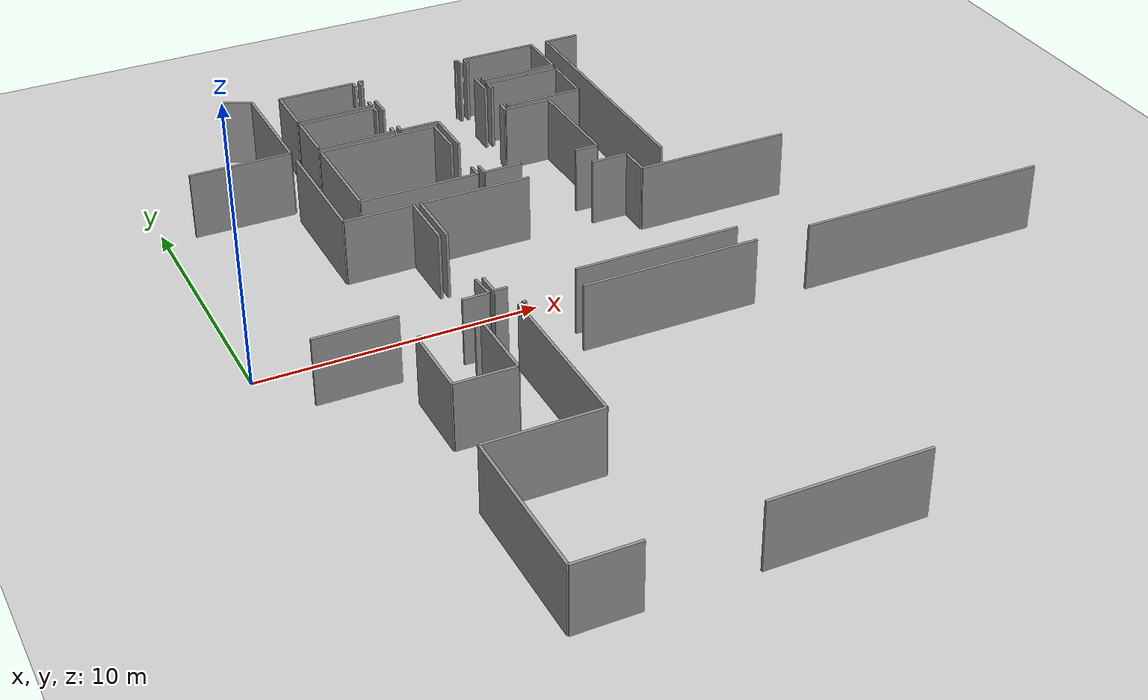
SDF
<sdf version="1.6">
 <world name="default">
  <model name="ground_plane">
   <static>1</static>
   <link name="link">
    <collision name="collision">
     <geometry><plane><normal>0 0 1</normal><size>100 100</size></plane></geometry>
     <surface><friction><ode><mu>100</mu><mu2>50</mu2></ode></friction></surface>
    </collision>
    <visual name="visual">
     <cast_shadows>0</cast_shadows>
     <geometry><plane><normal>0 0 1</normal><size>100 100</size></plane></geometry>
     <material>
      <script><uri>file://media/materials/scripts/gazebo.material</uri><name>Gazebo/Grey</name></script>
     </material>
    </visual>
   </link>
  </model>
  <model name="50056458">
   <static>1</static>
   <link name="Wall_136">
    <collision name="Wall_136_Collision">
     <geometry><box><size>0.935739876511 0.1 2.5</size></box></geometry>
     <pose>0.467869938255 0 1.25 0 0 0</pose>
    </collision>
    <visual name="Wall_136_Visual">
     <pose>0.467869938255 0 1.25 0 0 0</pose>
     <geometry><box><size>0.935739876511 0.1 2.5</size></box></geometry>
     <material>
      <script><uri>file://media/materials/scripts/gazebo.material</uri><name>Gazebo/Grey</name></script>
      <ambient>1 1 1 1</ambient>
     </material>
    </visual>
    <pose>62.1850305335 -17.0083088416 0 0 0 3.14159265359</pose>
   </link>
   <link name="Wall_137">
    <collision name="Wall_137_Collision">
     <geometry><box><size>2.92494939314 0.1 2.5</size></box></geometry>
     <pose>1.46247469657 0 1.25 0 0 0</pose>
    </collision>
    <visual name="Wall_137_Visual">
     <pose>1.46247469657 0 1.25 0 0 0</pose>
     <geometry><box><size>2.92494939314 0.1 2.5</size></box></geometry>
     <material>
      <script><uri>file://media/materials/scripts/gazebo.material</uri><name>Gazebo/Grey</name></script>
      <ambient>1 1 1 1</ambient>
     </material>
    </visual>
    <pose>59.10694775 -17.0083088416 0 0 0 3.14159265359</pose>
   </link>
   <link name="Wall_147">
    <collision name="Wall_147_Collision">
     <geometry><box><size>1.12197871077 0.1 2.5</size></box></geometry>
     <pose>0.560989355386 0 1.25 0 0 0</pose>
    </collision>
    <visual name="Wall_147_Visual">
     <pose>0.560989355386 0 1.25 0 0 0</pose>
     <geometry><box><size>1.12197871077 0.1 2.5</size></box></geometry>
     <material>
      <script><uri>file://media/materials/scripts/gazebo.material</uri><name>Gazebo/Grey</name></script>
      <ambient>1 1 1 1</ambient>
     </material>
    </visual>
    <pose>58.5645438607 -0.745847696647 0 0 0 -0.455882741428</pose>
   </link>
   <link name="Wall_148">
    <collision name="Wall_148_Collision">
     <geometry><box><size>4.29637409268 0.1 2.5</size></box></geometry>
     <pose>2.14818704634 0 1.25 0 0 0</pose>
    </collision>
    <visual name="Wall_148_Visual">
     <pose>2.14818704634 0 1.25 0 0 0</pose>
     <geometry><box><size>4.29637409268 0.1 2.5</size></box></geometry>
     <material>
      <script><uri>file://media/materials/scripts/gazebo.material</uri><name>Gazebo/Grey</name></script>
      <ambient>1 1 1 1</ambient>
     </material>
    </visual>
    <pose>59.5719379674 -1.23980451777 0 0 0 -1.57079632679</pose>
   </link>
   <link name="Wall_149">
    <collision name="Wall_149_Collision">
     <geometry><box><size>3.72093811141 0.1 2.5</size></box></geometry>
     <pose>1.86046905571 0 1.25 0 0 0</pose>
    </collision>
    <visual name="Wall_149_Visual">
     <pose>1.86046905571 0 1.25 0 0 0</pose>
     <geometry><box><size>3.72093811141 0.1 2.5</size></box></geometry>
     <material>
      <script><uri>file://media/materials/scripts/gazebo.material</uri><name>Gazebo/Grey</name></script>
      <ambient>1 1 1 1</ambient>
     </material>
    </visual>
    <pose>59.5719379674 -5.53617861045 0 0 0 3.14159265359</pose>
   </link>
   <link name="Wall_152">
    <collision name="Wall_152_Collision">
     <geometry><box><size>4.66734989455 0.1 2.5</size></box></geometry>
     <pose>2.33367494728 0 1.25 0 0 0</pose>
    </collision>
    <visual name="Wall_152_Visual">
     <pose>2.33367494728 0 1.25 0 0 0</pose>
     <geometry><box><size>4.66734989455 0.1 2.5</size></box></geometry>
     <material>
      <script><uri>file://media/materials/scripts/gazebo.material</uri><name>Gazebo/Grey</name></script>
      <ambient>1 1 1 1</ambient>
     </material>
    </visual>
    <pose>59.5904020598 -6.15938407853 0 0 0 -1.57079632679</pose>
   </link>
   <link name="Wall_153">
    <collision name="Wall_153_Collision">
     <geometry><box><size>2.52771731305 0.1 2.5</size></box></geometry>
     <pose>1.26385865653 0 1.25 0 0 0</pose>
    </collision>
    <visual name="Wall_153_Visual">
     <pose>1.26385865653 0 1.25 0 0 0</pose>
     <geometry><box><size>2.52771731305 0.1 2.5</size></box></geometry>
     <material>
      <script><uri>file://media/materials/scripts/gazebo.material</uri><name>Gazebo/Grey</name></script>
      <ambient>1 1 1 1</ambient>
     </material>
    </visual>
    <pose>59.5904020598 -10.8267339731 0 0 0 0.0</pose>
   </link>
   <link name="Wall_154">
    <collision name="Wall_154_Collision">
     <geometry><box><size>2.28327983264 0.1 2.5</size></box></geometry>
     <pose>1.14163991632 0 1.25 0 0 0</pose>
    </collision>
    <visual name="Wall_154_Visual">
     <pose>1.14163991632 0 1.25 0 0 0</pose>
     <geometry><box><size>2.28327983264 0.1 2.5</size></box></geometry>
     <material>
      <script><uri>file://media/materials/scripts/gazebo.material</uri><name>Gazebo/Grey</name></script>
      <ambient>1 1 1 1</ambient>
     </material>
    </visual>
    <pose>62.1181193729 -10.8267339731 0 0 0 -1.57079632679</pose>
   </link>
   <link name="Wall_155">
    <collision name="Wall_155_Collision">
     <geometry><box><size>0.912617376775 0.1 2.5</size></box></geometry>
     <pose>0.456308688387 0 1.25 0 0 0</pose>
    </collision>
    <visual name="Wall_155_Visual">
     <pose>0.456308688387 0 1.25 0 0 0</pose>
     <geometry><box><size>0.912617376775 0.1 2.5</size></box></geometry>
     <material>
      <script><uri>file://media/materials/scripts/gazebo.material</uri><name>Gazebo/Grey</name></script>
      <ambient>1 1 1 1</ambient>
     </material>
    </visual>
    <pose>62.1181193729 -16.0981476619 0 0 0 -1.4974126123</pose>
   </link>
   <link name="Wall_156">
    <collision name="Wall_156_Collision">
     <geometry><box><size>2.77757544445 0.1 2.5</size></box></geometry>
     <pose>1.38878772223 0 1.25 0 0 0</pose>
    </collision>
    <visual name="Wall_156_Visual">
     <pose>1.38878772223 0 1.25 0 0 0</pose>
     <geometry><box><size>2.77757544445 0.1 2.5</size></box></geometry>
     <material>
      <script><uri>file://media/materials/scripts/gazebo.material</uri><name>Gazebo/Grey</name></script>
      <ambient>1 1 1 1</ambient>
     </material>
    </visual>
    <pose>61.3273819103 -21.1293587539 0 0 0 1.57079632679</pose>
   </link>
   <link name="Wall_157">
    <collision name="Wall_157_Collision">
     <geometry><box><size>0.218011806855 0.1 2.5</size></box></geometry>
     <pose>0.109005903428 0 1.25 0 0 0</pose>
    </collision>
    <visual name="Wall_157_Visual">
     <pose>0.109005903428 0 1.25 0 0 0</pose>
     <geometry><box><size>0.218011806855 0.1 2.5</size></box></geometry>
     <material>
      <script><uri>file://media/materials/scripts/gazebo.material</uri><name>Gazebo/Grey</name></script>
      <ambient>1 1 1 1</ambient>
     </material>
    </visual>
    <pose>61.3273819103 -18.3517833095 0 0 0 3.14159265359</pose>
   </link>
   <link name="Wall_158">
    <collision name="Wall_158_Collision">
     <geometry><box><size>0.14534120457 0.1 2.5</size></box></geometry>
     <pose>0.0726706022851 0 1.25 0 0 0</pose>
    </collision>
    <visual name="Wall_158_Visual">
     <pose>0.0726706022851 0 1.25 0 0 0</pose>
     <geometry><box><size>0.14534120457 0.1 2.5</size></box></geometry>
     <material>
      <script><uri>file://media/materials/scripts/gazebo.material</uri><name>Gazebo/Grey</name></script>
      <ambient>1 1 1 1</ambient>
     </material>
    </visual>
    <pose>59.3103915573 -18.3517833095 0 0 0 3.14159265359</pose>
   </link>
   <link name="Wall_159">
    <collision name="Wall_159_Collision">
     <geometry><box><size>2.7523355383 0.1 2.5</size></box></geometry>
     <pose>1.37616776915 0 1.25 0 0 0</pose>
    </collision>
    <visual name="Wall_159_Visual">
     <pose>1.37616776915 0 1.25 0 0 0</pose>
     <geometry><box><size>2.7523355383 0.1 2.5</size></box></geometry>
     <material>
      <script><uri>file://media/materials/scripts/gazebo.material</uri><name>Gazebo/Grey</name></script>
      <ambient>1 1 1 1</ambient>
     </material>
    </visual>
    <pose>59.1650503528 -18.3517833095 0 0 0 -1.57079632679</pose>
   </link>
   <link name="Wall_160">
    <collision name="Wall_160_Collision">
     <geometry><box><size>2.16247885942 0.1 2.5</size></box></geometry>
     <pose>1.08123942971 0 1.25 0 0 0</pose>
    </collision>
    <visual name="Wall_160_Visual">
     <pose>1.08123942971 0 1.25 0 0 0</pose>
     <geometry><box><size>2.16247885942 0.1 2.5</size></box></geometry>
     <material>
      <script><uri>file://media/materials/scripts/gazebo.material</uri><name>Gazebo/Grey</name></script>
      <ambient>1 1 1 1</ambient>
     </material>
    </visual>
    <pose>59.1650503528 -21.1041188478 0 0 0 -0.0116720120296</pose>
   </link>
   <link name="Wall_175">
    <collision name="Wall_175_Collision">
     <geometry><box><size>6.01353468793 0.1 2.5</size></box></geometry>
     <pose>3.00676734397 0 1.25 0 0 0</pose>
    </collision>
    <visual name="Wall_175_Visual">
     <pose>3.00676734397 0 1.25 0 0 0</pose>
     <geometry><box><size>6.01353468793 0.1 2.5</size></box></geometry>
     <material>
      <script><uri>file://media/materials/scripts/gazebo.material</uri><name>Gazebo/Grey</name></script>
      <ambient>1 1 1 1</ambient>
     </material>
    </visual>
    <pose>71.2915547952 -16.9637578663 0 0 0 3.14159265359</pose>
   </link>
   <link name="Wall_176">
    <collision name="Wall_176_Collision">
     <geometry><box><size>0.461094124523 0.1 2.5</size></box></geometry>
     <pose>0.230547062261 0 1.25 0 0 0</pose>
    </collision>
    <visual name="Wall_176_Visual">
     <pose>0.230547062261 0 1.25 0 0 0</pose>
     <geometry><box><size>0.461094124523 0.1 2.5</size></box></geometry>
     <material>
      <script><uri>file://media/materials/scripts/gazebo.material</uri><name>Gazebo/Grey</name></script>
      <ambient>1 1 1 1</ambient>
     </material>
    </visual>
    <pose>62.8416068842 -16.9637578663 0 0 0 3.14159265359</pose>
   </link>
   <link name="Wall_177">
    <collision name="Wall_177_Collision">
     <geometry><box><size>0.842572437684 0.1 2.5</size></box></geometry>
     <pose>0.421286218842 0 1.25 0 0 0</pose>
    </collision>
    <visual name="Wall_177_Visual">
     <pose>0.421286218842 0 1.25 0 0 0</pose>
     <geometry><box><size>0.842572437684 0.1 2.5</size></box></geometry>
     <material>
      <script><uri>file://media/materials/scripts/gazebo.material</uri><name>Gazebo/Grey</name></script>
      <ambient>1 1 1 1</ambient>
     </material>
    </visual>
    <pose>62.3805127597 -16.9637578663 0 0 0 1.57079632679</pose>
   </link>
   <link name="Wall_178">
    <collision name="Wall_178_Collision">
     <geometry><box><size>2.30547062261 0.1 2.5</size></box></geometry>
     <pose>1.15273531131 0 1.25 0 0 0</pose>
    </collision>
    <visual name="Wall_178_Visual">
     <pose>1.15273531131 0 1.25 0 0 0</pose>
     <geometry><box><size>2.30547062261 0.1 2.5</size></box></geometry>
     <material>
      <script><uri>file://media/materials/scripts/gazebo.material</uri><name>Gazebo/Grey</name></script>
      <ambient>1 1 1 1</ambient>
     </material>
    </visual>
    <pose>62.3805127597 -13.1494829207 0 0 0 1.57079632679</pose>
   </link>
   <link name="Wall_179">
    <collision name="Wall_179_Collision">
     <geometry><box><size>4.06023698409 0.1 2.5</size></box></geometry>
     <pose>2.03011849204 0 1.25 0 0 0</pose>
    </collision>
    <visual name="Wall_179_Visual">
     <pose>2.03011849204 0 1.25 0 0 0</pose>
     <geometry><box><size>4.06023698409 0.1 2.5</size></box></geometry>
     <material>
      <script><uri>file://media/materials/scripts/gazebo.material</uri><name>Gazebo/Grey</name></script>
      <ambient>1 1 1 1</ambient>
     </material>
    </visual>
    <pose>62.3805127597 -10.8440122981 0 0 0 0.0</pose>
   </link>
   <link name="Wall_180">
    <collision name="Wall_180_Collision">
     <geometry><box><size>1.3810802341 0.1 2.5</size></box></geometry>
     <pose>0.690540117052 0 1.25 0 0 0</pose>
    </collision>
    <visual name="Wall_180_Visual">
     <pose>0.690540117052 0 1.25 0 0 0</pose>
     <geometry><box><size>1.3810802341 0.1 2.5</size></box></geometry>
     <material>
      <script><uri>file://media/materials/scripts/gazebo.material</uri><name>Gazebo/Grey</name></script>
      <ambient>1 1 1 1</ambient>
     </material>
    </visual>
    <pose>68.9123971982 -10.8440122981 0 0 0 0.0</pose>
   </link>
   <link name="Wall_181">
    <collision name="Wall_181_Collision">
     <geometry><box><size>1.17221577579 0.1 2.5</size></box></geometry>
     <pose>0.586107887894 0 1.25 0 0 0</pose>
    </collision>
    <visual name="Wall_181_Visual">
     <pose>0.586107887894 0 1.25 0 0 0</pose>
     <geometry><box><size>1.17221577579 0.1 2.5</size></box></geometry>
     <material>
      <script><uri>file://media/materials/scripts/gazebo.material</uri><name>Gazebo/Grey</name></script>
      <ambient>1 1 1 1</ambient>
     </material>
    </visual>
    <pose>70.2934774323 -10.8440122981 0 0 0 -1.57079632679</pose>
   </link>
   <link name="Wall_182">
    <collision name="Wall_182_Collision">
     <geometry><box><size>5.68151981502 0.1 2.5</size></box></geometry>
     <pose>2.84075990751 0 1.25 0 0 0</pose>
    </collision>
    <visual name="Wall_182_Visual">
     <pose>2.84075990751 0 1.25 0 0 0</pose>
     <geometry><box><size>5.68151981502 0.1 2.5</size></box></geometry>
     <material>
      <script><uri>file://media/materials/scripts/gazebo.material</uri><name>Gazebo/Grey</name></script>
      <ambient>1 1 1 1</ambient>
     </material>
    </visual>
    <pose>70.2934774323 -12.0162280739 0 0 0 0.0</pose>
   </link>
   <link name="Wall_195">
    <collision name="Wall_195_Collision">
     <geometry><box><size>0.860358948732 0.1 2.5</size></box></geometry>
     <pose>0.430179474366 0 1.25 0 0 0</pose>
    </collision>
    <visual name="Wall_195_Visual">
     <pose>0.430179474366 0 1.25 0 0 0</pose>
     <geometry><box><size>0.860358948732 0.1 2.5</size></box></geometry>
     <material>
      <script><uri>file://media/materials/scripts/gazebo.material</uri><name>Gazebo/Grey</name></script>
      <ambient>1 1 1 1</ambient>
     </material>
    </visual>
    <pose>69.615387873 -9.82086442444 0 0 0 3.14159265359</pose>
   </link>
   <link name="Wall_196">
    <collision name="Wall_196_Collision">
     <geometry><box><size>1.41394293071 0.1 2.5</size></box></geometry>
     <pose>0.706971465354 0 1.25 0 0 0</pose>
    </collision>
    <visual name="Wall_196_Visual">
     <pose>0.706971465354 0 1.25 0 0 0</pose>
     <geometry><box><size>1.41394293071 0.1 2.5</size></box></geometry>
     <material>
      <script><uri>file://media/materials/scripts/gazebo.material</uri><name>Gazebo/Grey</name></script>
      <ambient>1 1 1 1</ambient>
     </material>
    </visual>
    <pose>66.6213251798 -9.82086442444 0 0 0 3.14159265359</pose>
   </link>
   <link name="Wall_197">
    <collision name="Wall_197_Collision">
     <geometry><box><size>0.486672821364 0.1 2.5</size></box></geometry>
     <pose>0.243336410682 0 1.25 0 0 0</pose>
    </collision>
    <visual name="Wall_197_Visual">
     <pose>0.243336410682 0 1.25 0 0 0</pose>
     <geometry><box><size>0.486672821364 0.1 2.5</size></box></geometry>
     <material>
      <script><uri>file://media/materials/scripts/gazebo.material</uri><name>Gazebo/Grey</name></script>
      <ambient>1 1 1 1</ambient>
     </material>
    </visual>
    <pose>65.2073822491 -9.82086442444 0 0 0 1.57079632679</pose>
   </link>
   <link name="Wall_198">
    <collision name="Wall_198_Collision">
     <geometry><box><size>1.90468124031 0.1 2.5</size></box></geometry>
     <pose>0.952340620156 0 1.25 0 0 0</pose>
    </collision>
    <visual name="Wall_198_Visual">
     <pose>0.952340620156 0 1.25 0 0 0</pose>
     <geometry><box><size>1.90468124031 0.1 2.5</size></box></geometry>
     <material>
      <script><uri>file://media/materials/scripts/gazebo.material</uri><name>Gazebo/Grey</name></script>
      <ambient>1 1 1 1</ambient>
     </material>
    </visual>
    <pose>65.2073822491 -7.56333268398 0 0 0 1.57079632679</pose>
   </link>
   <link name="Wall_199">
    <collision name="Wall_199_Collision">
     <geometry><box><size>1.46493092905 0.1 2.5</size></box></geometry>
     <pose>0.732465464524 0 1.25 0 0 0</pose>
    </collision>
    <visual name="Wall_199_Visual">
     <pose>0.732465464524 0 1.25 0 0 0</pose>
     <geometry><box><size>1.46493092905 0.1 2.5</size></box></geometry>
     <material>
      <script><uri>file://media/materials/scripts/gazebo.material</uri><name>Gazebo/Grey</name></script>
      <ambient>1 1 1 1</ambient>
     </material>
    </visual>
    <pose>65.2073822491 -5.65865144367 0 0 0 3.14159265359</pose>
   </link>
   <link name="Wall_200">
    <collision name="Wall_200_Collision">
     <geometry><box><size>0.307791338816 0.1 2.5</size></box></geometry>
     <pose>0.153895669408 0 1.25 0 0 0</pose>
    </collision>
    <visual name="Wall_200_Visual">
     <pose>0.153895669408 0 1.25 0 0 0</pose>
     <geometry><box><size>0.307791338816 0.1 2.5</size></box></geometry>
     <material>
      <script><uri>file://media/materials/scripts/gazebo.material</uri><name>Gazebo/Grey</name></script>
      <ambient>1 1 1 1</ambient>
     </material>
    </visual>
    <pose>63.74245132 -5.65865144367 0 0 0 1.57079632679</pose>
   </link>
   <link name="Wall_201">
    <collision name="Wall_201_Collision">
     <geometry><box><size>0.850703414163 0.1 2.5</size></box></geometry>
     <pose>0.425351707082 0 1.25 0 0 0</pose>
    </collision>
    <visual name="Wall_201_Visual">
     <pose>0.425351707082 0 1.25 0 0 0</pose>
     <geometry><box><size>0.850703414163 0.1 2.5</size></box></geometry>
     <material>
      <script><uri>file://media/materials/scripts/gazebo.material</uri><name>Gazebo/Grey</name></script>
      <ambient>1 1 1 1</ambient>
     </material>
    </visual>
    <pose>63.74245132 -3.96977987075 0 0 0 1.57079632679</pose>
   </link>
   <link name="Wall_202">
    <collision name="Wall_202_Collision">
     <geometry><box><size>0.319987803535 0.1 2.5</size></box></geometry>
     <pose>0.159993901768 0 1.25 0 0 0</pose>
    </collision>
    <visual name="Wall_202_Visual">
     <pose>0.159993901768 0 1.25 0 0 0</pose>
     <geometry><box><size>0.319987803535 0.1 2.5</size></box></geometry>
     <material>
      <script><uri>file://media/materials/scripts/gazebo.material</uri><name>Gazebo/Grey</name></script>
      <ambient>1 1 1 1</ambient>
     </material>
    </visual>
    <pose>63.74245132 -1.72105668815 0 0 0 1.57079632679</pose>
   </link>
   <link name="Wall_203">
    <collision name="Wall_203_Collision">
     <geometry><box><size>0.168378971262 0.1 2.5</size></box></geometry>
     <pose>0.084189485631 0 1.25 0 0 0</pose>
    </collision>
    <visual name="Wall_203_Visual">
     <pose>0.084189485631 0 1.25 0 0 0</pose>
     <geometry><box><size>0.168378971262 0.1 2.5</size></box></geometry>
     <material>
      <script><uri>file://media/materials/scripts/gazebo.material</uri><name>Gazebo/Grey</name></script>
      <ambient>1 1 1 1</ambient>
     </material>
    </visual>
    <pose>63.74245132 -1.40106888462 0 0 0 0.0</pose>
   </link>
   <link name="Wall_204">
    <collision name="Wall_204_Collision">
     <geometry><box><size>0.126368926118 0.1 2.5</size></box></geometry>
     <pose>0.0631844630591 0 1.25 0 0 0</pose>
    </collision>
    <visual name="Wall_204_Visual">
     <pose>0.0631844630591 0 1.25 0 0 0</pose>
     <geometry><box><size>0.126368926118 0.1 2.5</size></box></geometry>
     <material>
      <script><uri>file://media/materials/scripts/gazebo.material</uri><name>Gazebo/Grey</name></script>
      <ambient>1 1 1 1</ambient>
     </material>
    </visual>
    <pose>67.6754724013 -1.40106888462 0 0 0 0.0</pose>
   </link>
   <link name="Wall_205">
    <collision name="Wall_205_Collision">
     <geometry><box><size>0.303217664546 0.1 2.5</size></box></geometry>
     <pose>0.151608832273 0 1.25 0 0 0</pose>
    </collision>
    <visual name="Wall_205_Visual">
     <pose>0.151608832273 0 1.25 0 0 0</pose>
     <geometry><box><size>0.303217664546 0.1 2.5</size></box></geometry>
     <material>
      <script><uri>file://media/materials/scripts/gazebo.material</uri><name>Gazebo/Grey</name></script>
      <ambient>1 1 1 1</ambient>
     </material>
    </visual>
    <pose>67.8018413274 -1.40106888462 0 0 0 -1.57079632679</pose>
   </link>
   <link name="Wall_206">
    <collision name="Wall_206_Collision">
     <geometry><box><size>1.00248164178 0.1 2.5</size></box></geometry>
     <pose>0.50124082089 0 1.25 0 0 0</pose>
    </collision>
    <visual name="Wall_206_Visual">
     <pose>0.50124082089 0 1.25 0 0 0</pose>
     <geometry><box><size>1.00248164178 0.1 2.5</size></box></geometry>
     <material>
      <script><uri>file://media/materials/scripts/gazebo.material</uri><name>Gazebo/Grey</name></script>
      <ambient>1 1 1 1</ambient>
     </material>
    </visual>
    <pose>67.8018413274 -3.08570557395 0 0 0 -1.57079632679</pose>
   </link>
   <link name="Wall_207">
    <collision name="Wall_207_Collision">
     <geometry><box><size>0.445509752937 0.1 2.5</size></box></geometry>
     <pose>0.222754876468 0 1.25 0 0 0</pose>
    </collision>
    <visual name="Wall_207_Visual">
     <pose>0.222754876468 0 1.25 0 0 0</pose>
     <geometry><box><size>0.445509752937 0.1 2.5</size></box></geometry>
     <material>
      <script><uri>file://media/materials/scripts/gazebo.material</uri><name>Gazebo/Grey</name></script>
      <ambient>1 1 1 1</ambient>
     </material>
    </visual>
    <pose>67.8018413274 -5.4358965672 0 0 0 -1.57079632679</pose>
   </link>
   <link name="Wall_208">
    <collision name="Wall_208_Collision">
     <geometry><box><size>1.75646031491 0.1 2.5</size></box></geometry>
     <pose>0.878230157453 0 1.25 0 0 0</pose>
    </collision>
    <visual name="Wall_208_Visual">
     <pose>0.878230157453 0 1.25 0 0 0</pose>
     <geometry><box><size>1.75646031491 0.1 2.5</size></box></geometry>
     <material>
      <script><uri>file://media/materials/scripts/gazebo.material</uri><name>Gazebo/Grey</name></script>
      <ambient>1 1 1 1</ambient>
     </material>
    </visual>
    <pose>67.8018413274 -5.88140632014 0 0 0 0.0</pose>
   </link>
   <link name="Wall_209">
    <collision name="Wall_209_Collision">
     <geometry><box><size>3.93987169756 0.1 2.5</size></box></geometry>
     <pose>1.96993584878 0 1.25 0 0 0</pose>
    </collision>
    <visual name="Wall_209_Visual">
     <pose>1.96993584878 0 1.25 0 0 0</pose>
     <geometry><box><size>3.93987169756 0.1 2.5</size></box></geometry>
     <material>
      <script><uri>file://media/materials/scripts/gazebo.material</uri><name>Gazebo/Grey</name></script>
      <ambient>1 1 1 1</ambient>
     </material>
    </visual>
    <pose>69.5583016423 -5.88140632014 0 0 0 -1.55630645689</pose>
   </link>
   <link name="Wall_210">
    <collision name="Wall_210_Collision">
     <geometry><box><size>4.38056357831 0.1 2.5</size></box></geometry>
     <pose>2.19028178915 0 1.25 0 0 0</pose>
    </collision>
    <visual name="Wall_210_Visual">
     <pose>2.19028178915 0 1.25 0 0 0</pose>
     <geometry><box><size>4.38056357831 0.1 2.5</size></box></geometry>
     <material>
      <script><uri>file://media/materials/scripts/gazebo.material</uri><name>Gazebo/Grey</name></script>
      <ambient>1 1 1 1</ambient>
     </material>
    </visual>
    <pose>64.9549831875 -9.81933986635 0 0 0 3.14159265359</pose>
   </link>
   <link name="Wall_211">
    <collision name="Wall_211_Collision">
     <geometry><box><size>3.88220247825 0.1 2.5</size></box></geometry>
     <pose>1.94110123913 0 1.25 0 0 0</pose>
    </collision>
    <visual name="Wall_211_Visual">
     <pose>1.94110123913 0 1.25 0 0 0</pose>
     <geometry><box><size>3.88220247825 0.1 2.5</size></box></geometry>
     <material>
      <script><uri>file://media/materials/scripts/gazebo.material</uri><name>Gazebo/Grey</name></script>
      <ambient>1 1 1 1</ambient>
     </material>
    </visual>
    <pose>60.5744196092 -9.81933986635 0 0 0 1.57079632679</pose>
   </link>
   <link name="Wall_212">
    <collision name="Wall_212_Collision">
     <geometry><box><size>4.36853650893 0.1 2.5</size></box></geometry>
     <pose>2.18426825447 0 1.25 0 0 0</pose>
    </collision>
    <visual name="Wall_212_Visual">
     <pose>2.18426825447 0 1.25 0 0 0</pose>
     <geometry><box><size>4.36853650893 0.1 2.5</size></box></geometry>
     <material>
      <script><uri>file://media/materials/scripts/gazebo.material</uri><name>Gazebo/Grey</name></script>
      <ambient>1 1 1 1</ambient>
     </material>
    </visual>
    <pose>60.5744196092 -5.93713738809 0 0 0 0.0</pose>
   </link>
   <link name="Wall_213">
    <collision name="Wall_213_Collision">
     <geometry><box><size>1.57249697206 0.1 2.5</size></box></geometry>
     <pose>0.786248486029 0 1.25 0 0 0</pose>
    </collision>
    <visual name="Wall_213_Visual">
     <pose>0.786248486029 0 1.25 0 0 0</pose>
     <geometry><box><size>1.57249697206 0.1 2.5</size></box></geometry>
     <material>
      <script><uri>file://media/materials/scripts/gazebo.material</uri><name>Gazebo/Grey</name></script>
      <ambient>1 1 1 1</ambient>
     </material>
    </visual>
    <pose>64.9429561181 -5.93713738809 0 0 0 -1.57079632679</pose>
   </link>
   <link name="Wall_214">
    <collision name="Wall_214_Collision">
     <geometry><box><size>0.511884643669 0.1 2.5</size></box></geometry>
     <pose>0.255942321835 0 1.25 0 0 0</pose>
    </collision>
    <visual name="Wall_214_Visual">
     <pose>0.255942321835 0 1.25 0 0 0</pose>
     <geometry><box><size>0.511884643669 0.1 2.5</size></box></geometry>
     <material>
      <script><uri>file://media/materials/scripts/gazebo.material</uri><name>Gazebo/Grey</name></script>
      <ambient>1 1 1 1</ambient>
     </material>
    </visual>
    <pose>64.9429561181 -9.30759653417 0 0 0 -1.5472985009</pose>
   </link>
   <link name="Wall_215">
    <collision name="Wall_215_Collision">
     <geometry><box><size>2.87650232495 0.1 2.5</size></box></geometry>
     <pose>1.43825116248 0 1.25 0 0 0</pose>
    </collision>
    <visual name="Wall_215_Visual">
     <pose>1.43825116248 0 1.25 0 0 0</pose>
     <geometry><box><size>2.87650232495 0.1 2.5</size></box></geometry>
     <material>
      <script><uri>file://media/materials/scripts/gazebo.material</uri><name>Gazebo/Grey</name></script>
      <ambient>1 1 1 1</ambient>
     </material>
    </visual>
    <pose>63.4749760729 -5.65627990887 0 0 0 3.14159265359</pose>
   </link>
   <link name="Wall_216">
    <collision name="Wall_216_Collision">
     <geometry><box><size>2.01461881813 0.1 2.5</size></box></geometry>
     <pose>1.00730940906 0 1.25 0 0 0</pose>
    </collision>
    <visual name="Wall_216_Visual">
     <pose>1.00730940906 0 1.25 0 0 0</pose>
     <geometry><box><size>2.01461881813 0.1 2.5</size></box></geometry>
     <material>
      <script><uri>file://media/materials/scripts/gazebo.material</uri><name>Gazebo/Grey</name></script>
      <ambient>1 1 1 1</ambient>
     </material>
    </visual>
    <pose>60.598473748 -5.65627990887 0 0 0 1.57079632679</pose>
   </link>
   <link name="Wall_217">
    <collision name="Wall_217_Collision">
     <geometry><box><size>2.882939348 0.1 2.5</size></box></geometry>
     <pose>1.441469674 0 1.25 0 0 0</pose>
    </collision>
    <visual name="Wall_217_Visual">
     <pose>1.441469674 0 1.25 0 0 0</pose>
     <geometry><box><size>2.882939348 0.1 2.5</size></box></geometry>
     <material>
      <script><uri>file://media/materials/scripts/gazebo.material</uri><name>Gazebo/Grey</name></script>
      <ambient>1 1 1 1</ambient>
     </material>
    </visual>
    <pose>60.598473748 -3.64166109074 0 0 0 0.0</pose>
   </link>
   <link name="Wall_218">
    <collision name="Wall_218_Collision">
     <geometry><box><size>0.311179245683 0.1 2.5</size></box></geometry>
     <pose>0.155589622841 0 1.25 0 0 0</pose>
    </collision>
    <visual name="Wall_218_Visual">
     <pose>0.155589622841 0 1.25 0 0 0</pose>
     <geometry><box><size>0.311179245683 0.1 2.5</size></box></geometry>
     <material>
      <script><uri>file://media/materials/scripts/gazebo.material</uri><name>Gazebo/Grey</name></script>
      <ambient>1 1 1 1</ambient>
     </material>
    </visual>
    <pose>63.481413096 -3.64166109074 0 0 0 -1.57079632679</pose>
   </link>
   <link name="Wall_219">
    <collision name="Wall_219_Collision">
     <geometry><box><size>0.310907098227 0.1 2.5</size></box></geometry>
     <pose>0.155453549113 0 1.25 0 0 0</pose>
    </collision>
    <visual name="Wall_219_Visual">
     <pose>0.155453549113 0 1.25 0 0 0</pose>
     <geometry><box><size>0.310907098227 0.1 2.5</size></box></geometry>
     <material>
      <script><uri>file://media/materials/scripts/gazebo.material</uri><name>Gazebo/Grey</name></script>
      <ambient>1 1 1 1</ambient>
     </material>
    </visual>
    <pose>63.481413096 -5.34543945387 0 0 0 -1.59150181422</pose>
   </link>
   <link name="Wall_220">
    <collision name="Wall_220_Collision">
     <geometry><box><size>2.90004827767 0.1 2.5</size></box></geometry>
     <pose>1.45002413884 0 1.25 0 0 0</pose>
    </collision>
    <visual name="Wall_220_Visual">
     <pose>1.45002413884 0 1.25 0 0 0</pose>
     <geometry><box><size>2.90004827767 0.1 2.5</size></box></geometry>
     <material>
      <script><uri>file://media/materials/scripts/gazebo.material</uri><name>Gazebo/Grey</name></script>
      <ambient>1 1 1 1</ambient>
     </material>
    </visual>
    <pose>63.4966586769 -3.40467700543 0 0 0 3.14159265359</pose>
   </link>
   <link name="Wall_221">
    <collision name="Wall_221_Collision">
     <geometry><box><size>1.97718244725 0.1 2.5</size></box></geometry>
     <pose>0.988591223627 0 1.25 0 0 0</pose>
    </collision>
    <visual name="Wall_221_Visual">
     <pose>0.988591223627 0 1.25 0 0 0</pose>
     <geometry><box><size>1.97718244725 0.1 2.5</size></box></geometry>
     <material>
      <script><uri>file://media/materials/scripts/gazebo.material</uri><name>Gazebo/Grey</name></script>
      <ambient>1 1 1 1</ambient>
     </material>
    </visual>
    <pose>60.5966103992 -3.40467700543 0 0 0 1.57079632679</pose>
   </link>
   <link name="Wall_222">
    <collision name="Wall_222_Collision">
     <geometry><box><size>2.89276427791 0.1 2.5</size></box></geometry>
     <pose>1.44638213895 0 1.25 0 0 0</pose>
    </collision>
    <visual name="Wall_222_Visual">
     <pose>1.44638213895 0 1.25 0 0 0</pose>
     <geometry><box><size>2.89276427791 0.1 2.5</size></box></geometry>
     <material>
      <script><uri>file://media/materials/scripts/gazebo.material</uri><name>Gazebo/Grey</name></script>
      <ambient>1 1 1 1</ambient>
     </material>
    </visual>
    <pose>60.5966103992 -1.42749455817 0 0 0 0.0</pose>
   </link>
   <link name="Wall_223">
    <collision name="Wall_223_Collision">
     <geometry><box><size>0.300168548367 0.1 2.5</size></box></geometry>
     <pose>0.150084274183 0 1.25 0 0 0</pose>
    </collision>
    <visual name="Wall_223_Visual">
     <pose>0.150084274183 0 1.25 0 0 0</pose>
     <geometry><box><size>0.300168548367 0.1 2.5</size></box></geometry>
     <material>
      <script><uri>file://media/materials/scripts/gazebo.material</uri><name>Gazebo/Grey</name></script>
      <ambient>1 1 1 1</ambient>
     </material>
    </visual>
    <pose>63.4893746771 -1.42749455817 0 0 0 -1.57079632679</pose>
   </link>
   <link name="Wall_224">
    <collision name="Wall_224_Collision">
     <geometry><box><size>0.308216212033 0.1 2.5</size></box></geometry>
     <pose>0.154108106016 0 1.25 0 0 0</pose>
    </collision>
    <visual name="Wall_224_Visual">
     <pose>0.154108106016 0 1.25 0 0 0</pose>
     <geometry><box><size>0.308216212033 0.1 2.5</size></box></geometry>
     <material>
      <script><uri>file://media/materials/scripts/gazebo.material</uri><name>Gazebo/Grey</name></script>
      <ambient>1 1 1 1</ambient>
     </material>
    </visual>
    <pose>63.4893746771 -3.09654687593 0 0 0 -1.54716136641</pose>
   </link>
   <link name="Wall_225">
    <collision name="Wall_225_Collision">
     <geometry><box><size>2.87209804602 0.1 2.5</size></box></geometry>
     <pose>1.43604902301 0 1.25 0 0 0</pose>
    </collision>
    <visual name="Wall_225_Visual">
     <pose>1.43604902301 0 1.25 0 0 0</pose>
     <geometry><box><size>2.87209804602 0.1 2.5</size></box></geometry>
     <material>
      <script><uri>file://media/materials/scripts/gazebo.material</uri><name>Gazebo/Grey</name></script>
      <ambient>1 1 1 1</ambient>
     </material>
    </visual>
    <pose>70.9417534112 -3.35131747228 0 0 0 3.14159265359</pose>
   </link>
   <link name="Wall_226">
    <collision name="Wall_226_Collision">
     <geometry><box><size>0.235628922561 0.1 2.5</size></box></geometry>
     <pose>0.11781446128 0 1.25 0 0 0</pose>
    </collision>
    <visual name="Wall_226_Visual">
     <pose>0.11781446128 0 1.25 0 0 0</pose>
     <geometry><box><size>0.235628922561 0.1 2.5</size></box></geometry>
     <material>
      <script><uri>file://media/materials/scripts/gazebo.material</uri><name>Gazebo/Grey</name></script>
      <ambient>1 1 1 1</ambient>
     </material>
    </visual>
    <pose>68.0696553652 -3.35131747228 0 0 0 1.57079632679</pose>
   </link>
   <link name="Wall_227">
    <collision name="Wall_227_Collision">
     <geometry><box><size>0.336927337867 0.1 2.5</size></box></geometry>
     <pose>0.168463668934 0 1.25 0 0 0</pose>
    </collision>
    <visual name="Wall_227_Visual">
     <pose>0.168463668934 0 1.25 0 0 0</pose>
     <geometry><box><size>0.336927337867 0.1 2.5</size></box></geometry>
     <material>
      <script><uri>file://media/materials/scripts/gazebo.material</uri><name>Gazebo/Grey</name></script>
      <ambient>1 1 1 1</ambient>
     </material>
    </visual>
    <pose>68.0696553652 -1.72952645532 0 0 0 1.57079632679</pose>
   </link>
   <link name="Wall_228">
    <collision name="Wall_228_Collision">
     <geometry><box><size>2.86515283695 0.1 2.5</size></box></geometry>
     <pose>1.43257641847 0 1.25 0 0 0</pose>
    </collision>
    <visual name="Wall_228_Visual">
     <pose>1.43257641847 0 1.25 0 0 0</pose>
     <geometry><box><size>2.86515283695 0.1 2.5</size></box></geometry>
     <material>
      <script><uri>file://media/materials/scripts/gazebo.material</uri><name>Gazebo/Grey</name></script>
      <ambient>1 1 1 1</ambient>
     </material>
    </visual>
    <pose>68.0696553652 -1.39259911745 0 0 0 0.0</pose>
   </link>
   <link name="Wall_229">
    <collision name="Wall_229_Collision">
     <geometry><box><size>1.95873066793 0.1 2.5</size></box></geometry>
     <pose>0.979365333965 0 1.25 0 0 0</pose>
    </collision>
    <visual name="Wall_229_Visual">
     <pose>0.979365333965 0 1.25 0 0 0</pose>
     <geometry><box><size>1.95873066793 0.1 2.5</size></box></geometry>
     <material>
      <script><uri>file://media/materials/scripts/gazebo.material</uri><name>Gazebo/Grey</name></script>
      <ambient>1 1 1 1</ambient>
     </material>
    </visual>
    <pose>70.9348082021 -1.39259911745 0 0 0 -1.56725054904</pose>
   </link>
   <link name="Wall_230">
    <collision name="Wall_230_Collision">
     <geometry><box><size>2.85498911635 0.1 2.5</size></box></geometry>
     <pose>1.42749455817 0 1.25 0 0 0</pose>
    </collision>
    <visual name="Wall_230_Visual">
     <pose>1.42749455817 0 1.25 0 0 0</pose>
     <geometry><box><size>2.85498911635 0.1 2.5</size></box></geometry>
     <material>
      <script><uri>file://media/materials/scripts/gazebo.material</uri><name>Gazebo/Grey</name></script>
      <ambient>1 1 1 1</ambient>
     </material>
    </visual>
    <pose>70.9178686678 -5.62036809608 0 0 0 3.14159265359</pose>
   </link>
   <link name="Wall_231">
    <collision name="Wall_231_Collision">
     <geometry><box><size>0.15143943693 0.1 2.5</size></box></geometry>
     <pose>0.0757197184649 0 1.25 0 0 0</pose>
    </collision>
    <visual name="Wall_231_Visual">
     <pose>0.0757197184649 0 1.25 0 0 0</pose>
     <geometry><box><size>0.15143943693 0.1 2.5</size></box></geometry>
     <material>
      <script><uri>file://media/materials/scripts/gazebo.material</uri><name>Gazebo/Grey</name></script>
      <ambient>1 1 1 1</ambient>
     </material>
    </visual>
    <pose>68.0628795514 -5.62036809608 0 0 0 1.57079632679</pose>
   </link>
   <link name="Wall_232">
    <collision name="Wall_232_Collision">
     <geometry><box><size>0.423318962962 0.1 2.5</size></box></geometry>
     <pose>0.211659481481 0 1.25 0 0 0</pose>
    </collision>
    <visual name="Wall_232_Visual">
     <pose>0.211659481481 0 1.25 0 0 0</pose>
     <geometry><box><size>0.423318962962 0.1 2.5</size></box></geometry>
     <material>
      <script><uri>file://media/materials/scripts/gazebo.material</uri><name>Gazebo/Grey</name></script>
      <ambient>1 1 1 1</ambient>
     </material>
    </visual>
    <pose>68.0628795514 -4.08818721573 0 0 0 1.57079632679</pose>
   </link>
   <link name="Wall_233">
    <collision name="Wall_233_Collision">
     <geometry><box><size>2.86549162764 0.1 2.5</size></box></geometry>
     <pose>1.43274581382 0 1.25 0 0 0</pose>
    </collision>
    <visual name="Wall_233_Visual">
     <pose>1.43274581382 0 1.25 0 0 0</pose>
     <geometry><box><size>2.86549162764 0.1 2.5</size></box></geometry>
     <material>
      <script><uri>file://media/materials/scripts/gazebo.material</uri><name>Gazebo/Grey</name></script>
      <ambient>1 1 1 1</ambient>
     </material>
    </visual>
    <pose>68.0628795514 -3.66486825277 0 0 0 0.0</pose>
   </link>
   <link name="Wall_234">
    <collision name="Wall_234_Collision">
     <geometry><box><size>1.95552804632 0.1 2.5</size></box></geometry>
     <pose>0.977764023158 0 1.25 0 0 0</pose>
    </collision>
    <visual name="Wall_234_Visual">
     <pose>0.977764023158 0 1.25 0 0 0</pose>
     <geometry><box><size>1.95552804632 0.1 2.5</size></box></geometry>
     <material>
      <script><uri>file://media/materials/scripts/gazebo.material</uri><name>Gazebo/Grey</name></script>
      <ambient>1 1 1 1</ambient>
     </material>
    </visual>
    <pose>70.9283711791 -3.66486825277 0 0 0 -1.57616703053</pose>
   </link>
   <link name="Wall_237">
    <collision name="Wall_237_Collision">
     <geometry><box><size>9.61199996612 0.1 2.5</size></box></geometry>
     <pose>4.80599998306 0 1.25 0 0 0</pose>
    </collision>
    <visual name="Wall_237_Visual">
     <pose>4.80599998306 0 1.25 0 0 0</pose>
     <geometry><box><size>9.61199996612 0.1 2.5</size></box></geometry>
     <material>
      <script><uri>file://media/materials/scripts/gazebo.material</uri><name>Gazebo/Grey</name></script>
      <ambient>1 1 1 1</ambient>
     </material>
    </visual>
    <pose>71.5966358085 -10.9935883863 0 0 0 1.57079632679</pose>
   </link>
   <link name="Wall_238">
    <collision name="Wall_238_Collision">
     <geometry><box><size>1.29197828352 0.1 2.5</size></box></geometry>
     <pose>0.645989141758 0 1.25 0 0 0</pose>
    </collision>
    <visual name="Wall_238_Visual">
     <pose>0.645989141758 0 1.25 0 0 0</pose>
     <geometry><box><size>1.29197828352 0.1 2.5</size></box></geometry>
     <material>
      <script><uri>file://media/materials/scripts/gazebo.material</uri><name>Gazebo/Grey</name></script>
      <ambient>1 1 1 1</ambient>
     </material>
    </visual>
    <pose>71.5966358085 -1.38158842013 0 0 0 0.0</pose>
   </link>
   <link name="Wall_282">
    <collision name="Wall_282_Collision">
     <geometry><box><size>5.55921637714 0.1 2.5</size></box></geometry>
     <pose>2.77960818857 0 1.25 0 0 0</pose>
    </collision>
    <visual name="Wall_282_Visual">
     <pose>2.77960818857 0 1.25 0 0 0</pose>
     <geometry><box><size>5.55921637714 0.1 2.5</size></box></geometry>
     <material>
      <script><uri>file://media/materials/scripts/gazebo.material</uri><name>Gazebo/Grey</name></script>
      <ambient>1 1 1 1</ambient>
     </material>
    </visual>
    <pose>70.2739969678 -30.0287125107 0 0 0 3.14159265359</pose>
   </link>
   <link name="Wall_283">
    <collision name="Wall_283_Collision">
     <geometry><box><size>2.28565136744 0.1 2.5</size></box></geometry>
     <pose>1.14282568372 0 1.25 0 0 0</pose>
    </collision>
    <visual name="Wall_283_Visual">
     <pose>1.14282568372 0 1.25 0 0 0</pose>
     <geometry><box><size>2.28565136744 0.1 2.5</size></box></geometry>
     <material>
      <script><uri>file://media/materials/scripts/gazebo.material</uri><name>Gazebo/Grey</name></script>
      <ambient>1 1 1 1</ambient>
     </material>
    </visual>
    <pose>60.966569829 -30.0287125107 0 0 0 3.14159265359</pose>
   </link>
   <link name="Wall_284">
    <collision name="Wall_284_Collision">
     <geometry><box><size>5.83634715882 0.1 2.5</size></box></geometry>
     <pose>2.91817357941 0 1.25 0 0 0</pose>
    </collision>
    <visual name="Wall_284_Visual">
     <pose>2.91817357941 0 1.25 0 0 0</pose>
     <geometry><box><size>5.83634715882 0.1 2.5</size></box></geometry>
     <material>
      <script><uri>file://media/materials/scripts/gazebo.material</uri><name>Gazebo/Grey</name></script>
      <ambient>1 1 1 1</ambient>
     </material>
    </visual>
    <pose>58.6809184616 -30.0287125107 0 0 0 1.57079632679</pose>
   </link>
   <link name="Wall_285">
    <collision name="Wall_285_Collision">
     <geometry><box><size>4.08327475078 0.1 2.5</size></box></geometry>
     <pose>2.04163737539 0 1.25 0 0 0</pose>
    </collision>
    <visual name="Wall_285_Visual">
     <pose>2.04163737539 0 1.25 0 0 0</pose>
     <geometry><box><size>4.08327475078 0.1 2.5</size></box></geometry>
     <material>
      <script><uri>file://media/materials/scripts/gazebo.material</uri><name>Gazebo/Grey</name></script>
      <ambient>1 1 1 1</ambient>
     </material>
    </visual>
    <pose>58.6809184616 -24.1923653519 0 0 0 0.0</pose>
   </link>
   <link name="Wall_286">
    <collision name="Wall_286_Collision">
     <geometry><box><size>6.1424445442 0.1 2.5</size></box></geometry>
     <pose>3.0712222721 0 1.25 0 0 0</pose>
    </collision>
    <visual name="Wall_286_Visual">
     <pose>3.0712222721 0 1.25 0 0 0</pose>
     <geometry><box><size>6.1424445442 0.1 2.5</size></box></geometry>
     <material>
      <script><uri>file://media/materials/scripts/gazebo.material</uri><name>Gazebo/Grey</name></script>
      <ambient>1 1 1 1</ambient>
     </material>
    </visual>
    <pose>62.7641932123 -24.1923653519 0 0 0 1.57079632679</pose>
   </link>
   <link name="Wall_287">
    <collision name="Wall_287_Collision">
     <geometry><box><size>0.162788924932 0.1 2.5</size></box></geometry>
     <pose>0.0813944624662 0 1.25 0 0 0</pose>
    </collision>
    <visual name="Wall_287_Visual">
     <pose>0.0813944624662 0 1.25 0 0 0</pose>
     <geometry><box><size>0.162788924932 0.1 2.5</size></box></geometry>
     <material>
      <script><uri>file://media/materials/scripts/gazebo.material</uri><name>Gazebo/Grey</name></script>
      <ambient>1 1 1 1</ambient>
     </material>
    </visual>
    <pose>62.7641932123 -18.0499208077 0 0 0 0.0</pose>
   </link>
   <link name="Wall_288">
    <collision name="Wall_288_Collision">
     <geometry><box><size>0.0831731135711 0.1 2.5</size></box></geometry>
     <pose>0.0415865567856 0 1.25 0 0 0</pose>
    </collision>
    <visual name="Wall_288_Visual">
     <pose>0.0415865567856 0 1.25 0 0 0</pose>
     <geometry><box><size>0.0831731135711 0.1 2.5</size></box></geometry>
     <material>
      <script><uri>file://media/materials/scripts/gazebo.material</uri><name>Gazebo/Grey</name></script>
      <ambient>1 1 1 1</ambient>
     </material>
    </visual>
    <pose>62.9269821373 -18.0499208077 0 0 0 1.57079632679</pose>
   </link>
   <link name="Wall_289">
    <collision name="Wall_289_Collision">
     <geometry><box><size>0.127385298178 0.1 2.5</size></box></geometry>
     <pose>0.0636926490891 0 1.25 0 0 0</pose>
    </collision>
    <visual name="Wall_289_Visual">
     <pose>0.0636926490891 0 1.25 0 0 0</pose>
     <geometry><box><size>0.127385298178 0.1 2.5</size></box></geometry>
     <material>
      <script><uri>file://media/materials/scripts/gazebo.material</uri><name>Gazebo/Grey</name></script>
      <ambient>1 1 1 1</ambient>
     </material>
    </visual>
    <pose>62.9269821373 -17.9667476941 0 0 0 0.0</pose>
   </link>
   <link name="Wall_290">
    <collision name="Wall_290_Collision">
     <geometry><box><size>6.4150016516 0.1 2.5</size></box></geometry>
     <pose>3.2075008258 0 1.25 0 0 0</pose>
    </collision>
    <visual name="Wall_290_Visual">
     <pose>3.2075008258 0 1.25 0 0 0</pose>
     <geometry><box><size>6.4150016516 0.1 2.5</size></box></geometry>
     <material>
      <script><uri>file://media/materials/scripts/gazebo.material</uri><name>Gazebo/Grey</name></script>
      <ambient>1 1 1 1</ambient>
     </material>
    </visual>
    <pose>65.0600083004 -17.9667476941 0 0 0 0.0</pose>
   </link>
   <link name="Wall_291">
    <collision name="Wall_291_Collision">
     <geometry><box><size>9.24339569905 0.1 2.5</size></box></geometry>
     <pose>4.62169784953 0 1.25 0 0 0</pose>
    </collision>
    <visual name="Wall_291_Visual">
     <pose>4.62169784953 0 1.25 0 0 0</pose>
     <geometry><box><size>9.24339569905 0.1 2.5</size></box></geometry>
     <material>
      <script><uri>file://media/materials/scripts/gazebo.material</uri><name>Gazebo/Grey</name></script>
      <ambient>1 1 1 1</ambient>
     </material>
    </visual>
    <pose>73.4789568635 -17.9667476941 0 0 0 0.0</pose>
   </link>
   <pose>-54.75 15.0009033007 0 0 0 0</pose>
  </model>
 </world>
</sdf>
